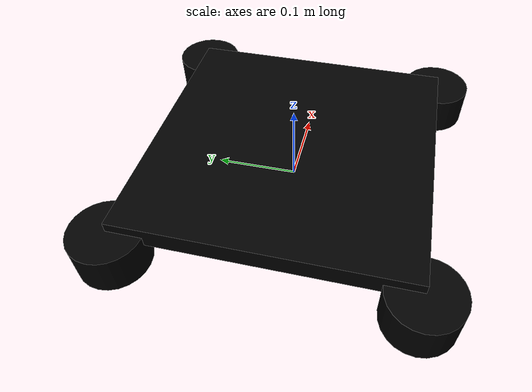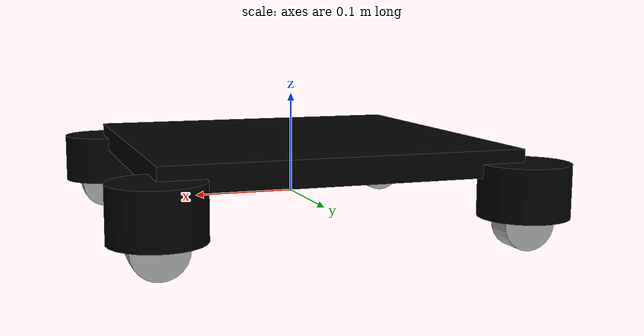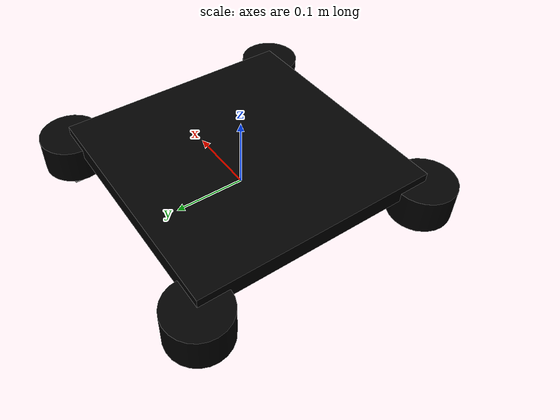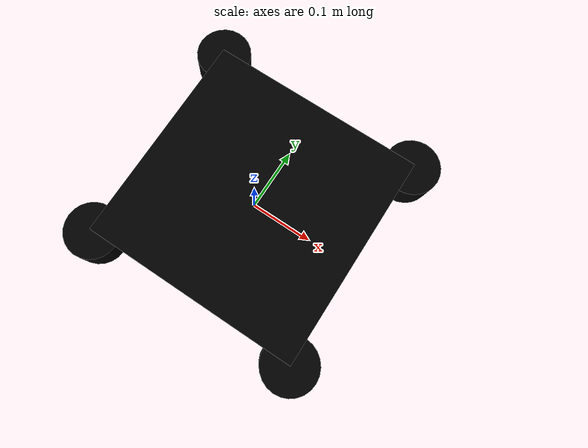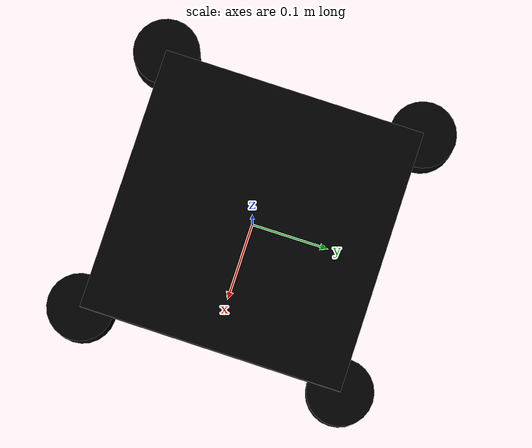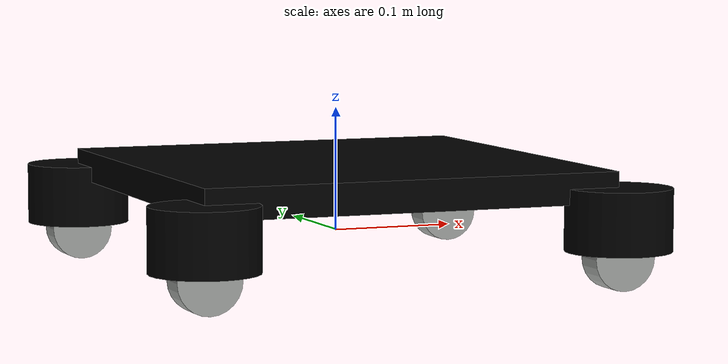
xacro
<?xml version="1.0"?>
<robot xmlns:xacro="http://www.ros.org/wiki/xacro" name="buffbot">
  <material name="black">
    <color rgba="0 0 0 1"/>
  </material>

  <material name="white">
    <color rgba="1 1 1 1"/>
  </material>

  <material name="dark-gray">
    <color rgba="0.33 0.35 0.36 1"/>
  </material>

  <material name="light-gray">
    <color rgba="0.63 0.64 0.63 1"/>
  </material>

  <material name="gold">
    <color rgba="0.81 0.72 0.48 1"/>
  </material>

  <xacro:macro name="swerve" params="id w l g">
      <link name="${id}_swerve">
        <visual>
         <origin xyz="0 0 0" rpy="0 0 0" />
         <geometry>
           <cylinder radius="${w*0.25}" length="0.05"/>
         </geometry>
         <material name="black"/>
       </visual>

       <collision>
         <origin xyz="0 0 0" rpy="0 0 0" />
         <geometry>
           <cylinder radius="${w*0.25}" length="0.05"/>
         </geometry>
       </collision>
      </link>

      <joint name="base_to_${id}_swerve" type="continuous">
        <parent link="base_link"/>
        <child link="${id}_swerve"/>
        <origin xyz="${l} ${w} ${g - 0.025}"/>
        <axis xyz="0 0 1"/>
      </joint>

      <link name="${id}_wheel">
        <visual>
         <origin xyz="0 0 0" rpy="0 0 0" />
         <geometry>
           <cylinder radius="${w*0.15}" length="0.025"/>
         </geometry>
         <material name="light-gray"/>
       </visual>

       <collision>
         <origin xyz="0 0 0" rpy="0 0 0" />
         <geometry>
           <cylinder radius="${w*0.15}" length="0.025"/>
         </geometry>
       </collision>
      </link>

      <joint name="${id}_swerve_to_wheel" type="continuous">
        <parent link="${id}_swerve"/>
        <child link="${id}_wheel"/>
        <origin xyz="0 0 ${g - 0.075}" rpy="1.57 0 0"/>
        <axis xyz="0 0 1"/>
      </joint>
  </xacro:macro>

  <xacro:macro name="swerve_chassis" params="w l g">
    <link name="base_link">
      <inertial>
       <origin xyz="0 0 ${g}" rpy="0 0 0"/>
       <mass value="1"/>
       <inertia ixx="100"  ixy="0"  ixz="0" iyy="100" iyz="0" izz="100" />
     </inertial>

     <visual>
       <origin xyz="0 0 ${g}" rpy="0 0 0" />
       <geometry>
         <box size="${l * 2} ${w * 2} 0.025"/>
       </geometry>
       <material name="black"/>
     </visual>

     <collision>
       <origin xyz="0 0 0.05" rpy="0 0 0"/>
       <geometry>
         <box size="${l * 2} ${w * 2} 0.025"/>
       </geometry>
     </collision>
    </link>

    <xacro:swerve id="fl" w="${w}" l="${l}" g="${g}"/>
    <xacro:swerve id="fr" w="-${w}" l="${l}" g="${g}"/>
    <xacro:swerve id="rr" w="-${w}" l="-${l}" g="${g}"/>
    <xacro:swerve id="rl" w="${w}" l="-${l}" g="${g}"/>

  </xacro:macro>

  <xacro:swerve_chassis w="0.17" l="0.17" g="0.045"/>

</robot>
